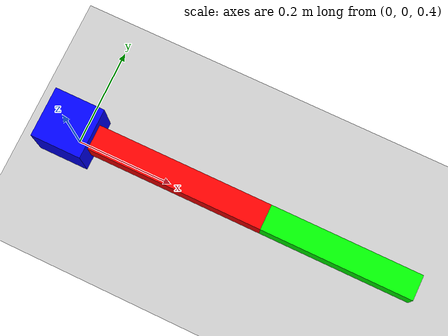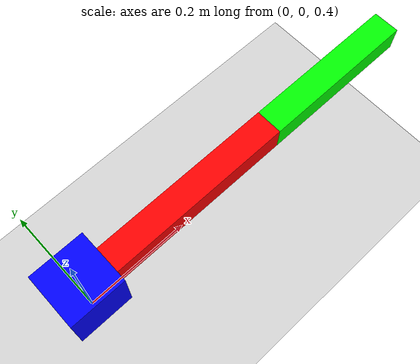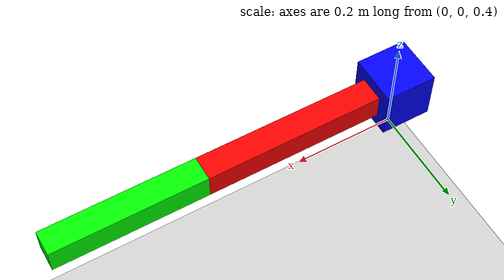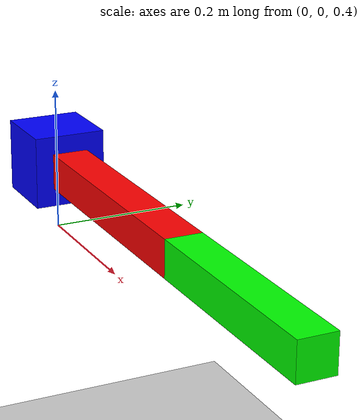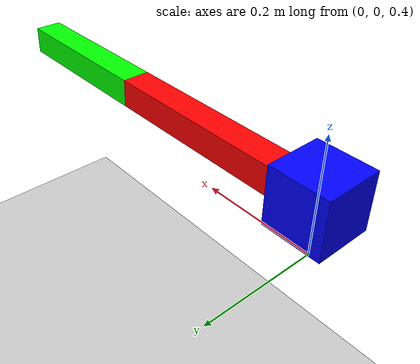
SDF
<?xml version="1.0" ?>
<sdf version="1.6">
  <world name="minimal_world_3">
    <gravity>0 0 -9.81</gravity>
    <scene>
      <ambient>0.35 0.35 0.4 1</ambient>
      <sky><time>12</time></sky>
    </scene>

    <light name="sun" type="directional">
      <cast_shadows>true</cast_shadows>
      <pose>0 0 10 0 0 0</pose>
      <diffuse>1 1 1 1</diffuse><specular>0.5 0.5 0.5 1</specular>
      <attenuation><range>100</range></attenuation>
      <direction>-0.5 0.5 -1</direction>
    </light>

    <!-- Include a model of the Ground Plane from an external URI -->
    <include>
      <uri>model://ground_plane</uri>
    </include>

    <!-- Spawn our arm model -->
    <include>
      <uri>model://arm</uri>
      <pose>0 0 0.5 0 0 0</pose>
      <name>crate_01</name>
    </include>

    <joint name="world_to_two_links" type="fixed">
        <parent>world</parent>
        <child>two_links::base_link</child>
    </joint>

  </world>
</sdf>

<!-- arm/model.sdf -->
<sdf version="1.6">
<model name="two_links">
  <static>false</static>

  <link name="base_link">
    <pose>0 0 0 0 0 0</pose>
    <inertial>
      <mass>10.0</mass>
      <inertia>
        <ixx>0.1</ixx>
        <iyy>0.1</iyy>
        <izz>0.1</izz>
      </inertia>
    </inertial>
    <visual name="visual">
      <geometry>
        <box><size>0.1 0.1 0.1</size></box>
      </geometry>
      <material>
        <ambient>0 0 1 1</ambient>
        <diffuse>0 0 1 1</diffuse>
      </material>
    </visual>
  </link>

  <link name="link1">
    <pose>0 0 0 0 0 0</pose>
    <inertial>
      <mass>0.5</mass>
      <inertia>
        <ixx>0.01</ixx>
        <iyy>0.01</iyy>
        <izz>0.01</izz>
      </inertia>
    </inertial>
    <collision name="collision">
      <geometry>
        <box><size>0.4 0.05 0.05</size></box>
      </geometry>
      <pose>0.2 0 0 0 0 0</pose>
    </collision>
    <visual name="visual">
      <geometry>
        <box><size>0.4 0.05 0.05</size></box>
      </geometry>
      <pose>0.2 0 0 0 0 0</pose>
      <material>
        <ambient>1 0 0 1</ambient>
        <diffuse>1 0 0 1</diffuse>
      </material>
    </visual>
  </link>

  <link name="link2">
    <pose>0.4 0 0 0 0 0</pose>
    <inertial>
      <mass>0.3</mass>
      <inertia>
        <ixx>0.01</ixx>
        <iyy>0.01</iyy>
        <izz>0.01</izz>
      </inertia>
    </inertial>
    <collision name="collision">
      <geometry>
        <box><size>0.3 0.05 0.05</size></box>
      </geometry>
      <pose>0.15 0 0 0 0 0</pose>
    </collision>
    <visual name="visual">
      <geometry>
        <box><size>0.3 0.05 0.05</size></box>
      </geometry>
      <pose>0.15 0 0 0 0 0</pose>
      <material>
        <ambient>0 1 0 1</ambient>
        <diffuse>0 1 0 1</diffuse>
      </material>
    </visual>
  </link>

  <joint name="joint1" type="revolute">
    <parent>base_link</parent>
    <child>link1</child>
    <pose>0 0 0.05 0 0 0</pose>
    <axis>
      <xyz>0 0 1</xyz>
      <limit>
        <lower>-1.57</lower>
        <upper>1.57</upper>
        <effort>10</effort>
        <velocity>1.0</velocity>
      </limit>
    </axis>
  </joint>

  <joint name="joint2" type="revolute">
    <parent>link1</parent>
    <child>link2</child>
    <axis>
      <xyz>0 0 1</xyz>
      <limit>
        <lower>-1.57</lower>
        <upper>1.57</upper>
        <effort>10</effort>
        <velocity>1.0</velocity>
      </limit>
    </axis>
  </joint>

  <!-- The following plug-in publishes the joint states for joint1 and joint2 via the ROS topic /joint_states-->
  <plugin name="joint_state_publisher" filename="libgazebo_ros_joint_state_publisher.so">
    <ros>
      <namespace>/</namespace>
      <remapping>joint_states:=/joint_states</remapping>
    </ros>
    <update_rate>50.0</update_rate>
    <joint_name>joint1</joint_name>
    <joint_name>joint2</joint_name>
  </plugin>

</model>
</sdf>
